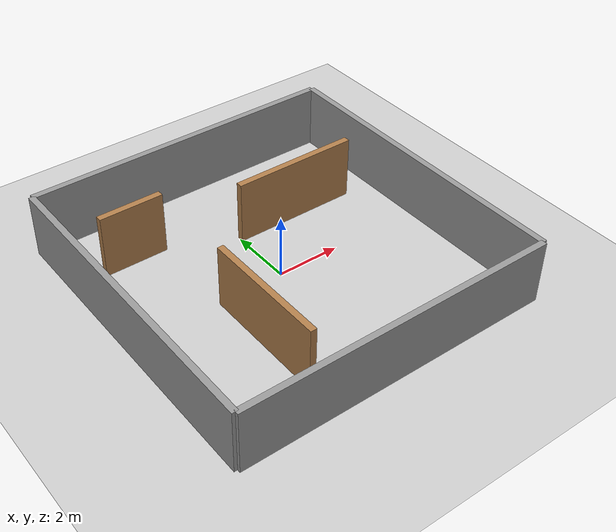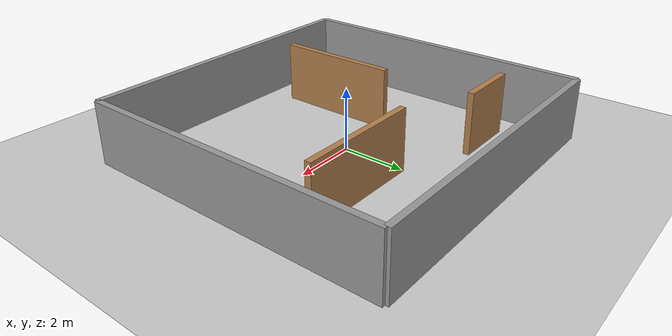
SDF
<?xml version="1.0" ?>
<sdf version="1.6">
  <world name="default">
    <include><uri>model://sun</uri></include>
    <include><uri>model://ground_plane</uri></include>

    <model name="wall_back">
      <pose>0 5 1 0 0 0</pose> <static>true</static>
      <link name="link"><collision name="c"><geometry><box><size>10 0.2 2</size></box></geometry></collision>
      <visual name="v"><geometry><box><size>10 0.2 2</size></box></geometry><material><script><name>Gazebo/Grey</name><uri>file://media/materials/scripts/gazebo.material</uri></script></material></visual></link>
    </model>
    <model name="wall_front">
      <pose>0 -5 1 0 0 0</pose> <static>true</static>
      <link name="link"><collision name="c"><geometry><box><size>10 0.2 2</size></box></geometry></collision>
      <visual name="v"><geometry><box><size>10 0.2 2</size></box></geometry><material><script><name>Gazebo/Grey</name><uri>file://media/materials/scripts/gazebo.material</uri></script></material></visual></link>
    </model>
    <model name="wall_right">
      <pose>5 0 1 0 0 0</pose> <static>true</static>
      <link name="link"><collision name="c"><geometry><box><size>0.2 10 2</size></box></geometry></collision>
      <visual name="v"><geometry><box><size>0.2 10 2</size></box></geometry><material><script><name>Gazebo/Grey</name><uri>file://media/materials/scripts/gazebo.material</uri></script></material></visual></link>
    </model>
    <model name="wall_left">
      <pose>-5 0 1 0 0 0</pose> <static>true</static>
      <link name="link"><collision name="c"><geometry><box><size>0.2 10 2</size></box></geometry></collision>
      <visual name="v"><geometry><box><size>0.2 10 2</size></box></geometry><material><script><name>Gazebo/Grey</name><uri>file://media/materials/scripts/gazebo.material</uri></script></material></visual></link>
    </model>

    <model name="inner_wall_1">
      <pose>2 2 1 0 0 0</pose> <static>true</static>
      <link name="link"><collision name="c"><geometry><box><size>4 0.2 2</size></box></geometry></collision>
      <visual name="v"><geometry><box><size>4 0.2 2</size></box></geometry><material><script><name>Gazebo/Wood</name><uri>file://media/materials/scripts/gazebo.material</uri></script></material></visual></link>
    </model>

    <model name="inner_wall_2">
      <pose>-2 -2 1 0 0 0</pose> <static>true</static>
      <link name="link"><collision name="c"><geometry><box><size>0.2 4 2</size></box></geometry></collision>
      <visual name="v"><geometry><box><size>0.2 4 2</size></box></geometry><material><script><name>Gazebo/Wood</name><uri>file://media/materials/scripts/gazebo.material</uri></script></material></visual></link>
    </model>

    <model name="inner_wall_3">
      <pose>-3 3 1 0 0 0</pose> <static>true</static>
      <link name="link"><collision name="c"><geometry><box><size>2 0.2 2</size></box></geometry></collision>
      <visual name="v"><geometry><box><size>2 0.2 2</size></box></geometry><material><script><name>Gazebo/Wood</name><uri>file://media/materials/scripts/gazebo.material</uri></script></material></visual></link>
    </model>

  </world>
</sdf>
